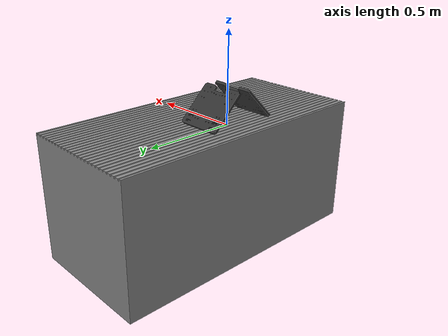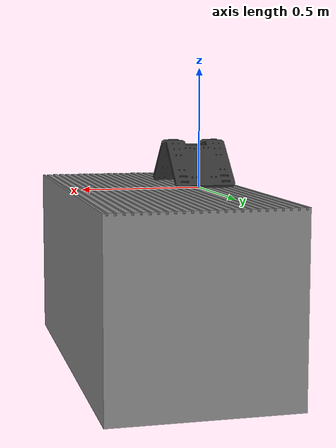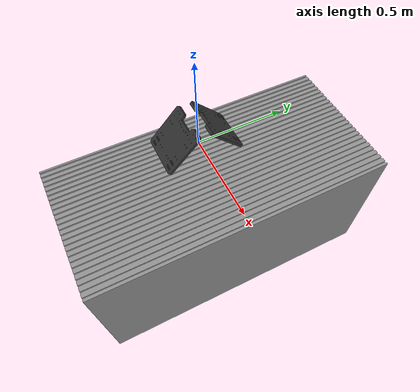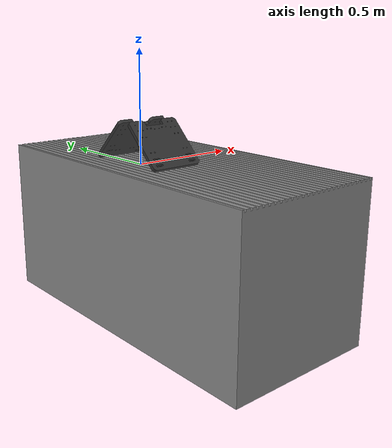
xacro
<?xml version="1.0"?>
<robot name="table_env" xmlns:xacro="http://www.ros.org/wiki/xacro">

  <!-- (선택) material을 이름으로 관리하고 싶으면 이렇게 정의해도 됨 -->
  <material name="mid_gray">
    <color rgba="0.55 0.55 0.55 1.0"/>
  </material>
  <material name="dark_gray">
    <color rgba="0.20 0.20 0.20 1.0"/>
  </material>
  <material name="collision_red">
    <color rgba="1.0 0.0 0.0 1.0"/>
  </material>

  <link name="table_link"/>

  <link name="table_top">
    <visual>
      <origin xyz="-0.185 -0.8 -0.75" rpy="0 0 0"/>
      <geometry>
        <mesh filename="package://franka_kistar_bringup/meshes/table/btable.STL" scale="0.001 0.001 0.001"/>
      </geometry>
      <material name="mid_gray"/>
    </visual>

    <collision>
      <origin xyz="0.05 0. -0.35" rpy="0 0 0"/>
      <geometry>
        <box size="1.0 1.8 0.7"/>
      </geometry>
      <material name="collision_red"/>
    </collision>
  </link>

  <joint name="table_top_joint" type="fixed">
    <parent link="table_link"/>
    <child link="table_top"/>
    <origin xyz="0 0 0" rpy="0 0 0"/>
  </joint>

  <link name="triangle_base">
    <visual>
      <origin xyz="-0.25 -0.8 -0.75" rpy="0 0 0"/>
      <geometry>
        <mesh filename="package://franka_kistar_bringup/meshes/table/triangle_1.STL" scale="0.001 0.001 0.001"/>
      </geometry>
      <material name="dark_gray"/>
    </visual>
    <collision>
      <origin xyz="0. 0. 0." rpy="0 0 0"/>
      <geometry>
        <box size="0.45 0.45 0.45"/>
      </geometry>
      <material name="collision_red"/>
    </collision>
  </link>

  <link name="triangle_base_2">
    <visual>
      <origin xyz="-0.25 -0.8 -0.75" rpy="0 0 0"/>
      <geometry>
        <mesh filename="package://franka_kistar_bringup/meshes/table/triangle_2.STL" scale="0.001 0.001 0.001"/>
      </geometry>
      <material name="dark_gray"/>
    </visual>
  </link>

  <joint name="table_base_joint" type="fixed">
    <parent link="table_link"/>
    <child link="triangle_base"/>
    <origin xyz="0 0 0" rpy="0 0 0"/>
  </joint>

  <joint name="table_base_joint_2" type="fixed">
    <parent link="table_link"/>
    <child link="triangle_base_2"/>
    <origin xyz="0 0 0" rpy="0 0 0"/>
  </joint>

</robot>
